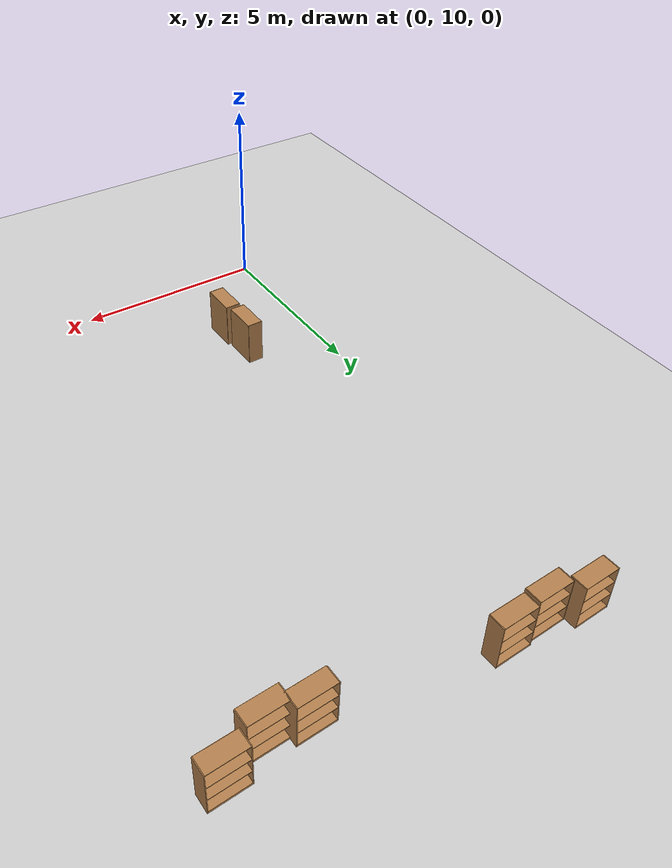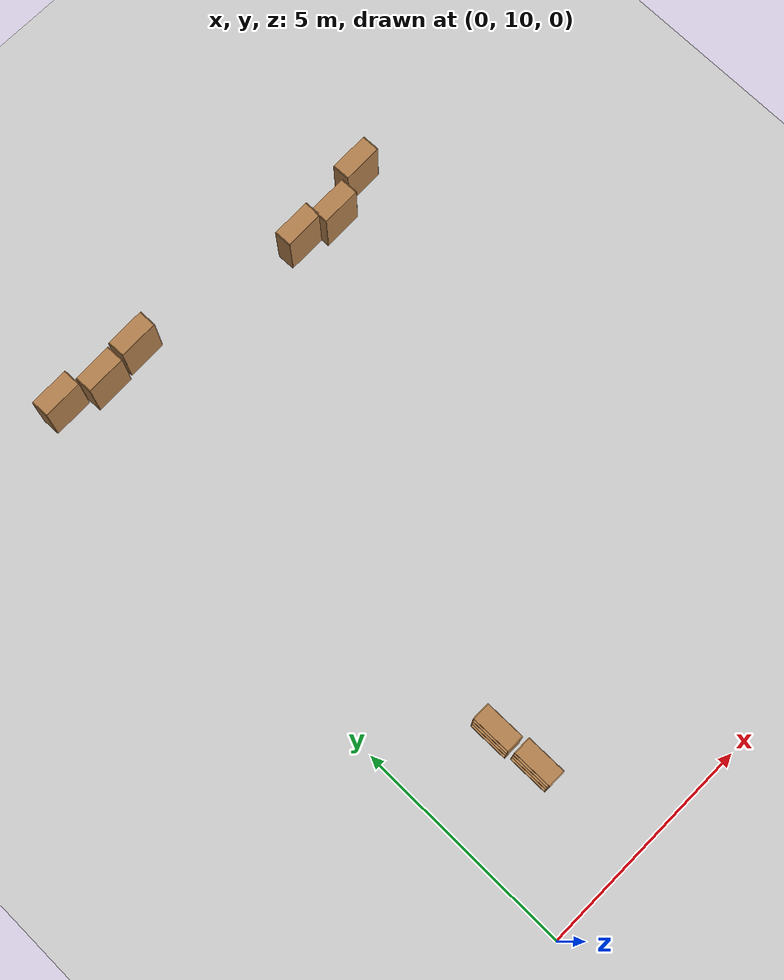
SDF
<sdf version="1.6">
 <world name="default">
  <model name="ground_plane">
   <static>1</static>
   <link name="link">
    <collision name="collision">
     <geometry><plane><normal>0 0 1</normal><size>100 100</size></plane></geometry>
     <surface>
      <contact><collide_bitmask>65535</collide_bitmask></contact>
      <friction><ode><mu>100</mu><mu2>50</mu2></ode></friction>
     </surface>
    </collision>
    <visual name="visual">
     <cast_shadows>0</cast_shadows>
     <geometry><plane><normal>0 0 1</normal><size>100 100</size></plane></geometry>
     <material>
      <script><uri>file://media/materials/scripts/gazebo.material</uri><name>Gazebo/Grey</name></script>
     </material>
    </visual>
   </link>
  </model>
  <model name="bookshelf_clone_2_clone_clone_0_clone_3_clone_clone">
   <static>1</static>
   <link name="link">
    <inertial><mass>1</mass></inertial>
    <collision name="back">
     <pose>0 0.005 0.6 0 -0 0</pose>
     <geometry><box><size>0.9 0.01 1.2</size></box></geometry>
    </collision>
    <visual name="visual1">
     <pose>0 0.005 0.6 0 -0 0</pose>
     <geometry><box><size>0.9 0.01 1.2</size></box></geometry>
     <material>
      <script><uri>file://media/materials/scripts/gazebo.material</uri><name>Gazebo/Wood</name></script>
     </material>
    </visual>
    <collision name="left_side">
     <pose>0.45 -0.195 0.6 0 -0 0</pose>
     <geometry><box><size>0.02 0.4 1.2</size></box></geometry>
    </collision>
    <visual name="visual2">
     <pose>0.45 -0.195 0.6 0 -0 0</pose>
     <geometry><box><size>0.02 0.4 1.2</size></box></geometry>
     <material>
      <script><uri>file://media/materials/scripts/gazebo.material</uri><name>Gazebo/Wood</name></script>
     </material>
    </visual>
    <collision name="right_side">
     <pose>-0.45 -0.195 0.6 0 -0 0</pose>
     <geometry><box><size>0.02 0.4 1.2</size></box></geometry>
    </collision>
    <visual name="visual3">
     <pose>-0.45 -0.195 0.6 0 -0 0</pose>
     <geometry><box><size>0.02 0.4 1.2</size></box></geometry>
     <material>
      <script><uri>file://media/materials/scripts/gazebo.material</uri><name>Gazebo/Wood</name></script>
     </material>
    </visual>
    <collision name="bottom">
     <pose>0 -0.195 0.03 0 -0 0</pose>
     <geometry><box><size>0.88 0.4 0.06</size></box></geometry>
    </collision>
    <visual name="visual4">
     <pose>0 -0.195 0.03 0 -0 0</pose>
     <geometry><box><size>0.88 0.4 0.06</size></box></geometry>
     <material>
      <script><uri>file://media/materials/scripts/gazebo.material</uri><name>Gazebo/Wood</name></script>
     </material>
    </visual>
    <collision name="top">
     <pose>0 -0.195 1.19 0 -0 0</pose>
     <geometry><box><size>0.88 0.4 0.02</size></box></geometry>
    </collision>
    <visual name="visual5">
     <pose>0 -0.195 1.19 0 -0 0</pose>
     <geometry><box><size>0.88 0.4 0.02</size></box></geometry>
     <material>
      <script><uri>file://media/materials/scripts/gazebo.material</uri><name>Gazebo/Wood</name></script>
     </material>
    </visual>
    <collision name="low_shelf">
     <pose>0 -0.195 0.43 0 -0 0</pose>
     <geometry><box><size>0.88 0.4 0.02</size></box></geometry>
    </collision>
    <visual name="visual6">
     <pose>0 -0.195 0.43 0 -0 0</pose>
     <geometry><box><size>0.88 0.4 0.02</size></box></geometry>
     <material>
      <script><uri>file://media/materials/scripts/gazebo.material</uri><name>Gazebo/Wood</name></script>
     </material>
    </visual>
    <collision name="high_shelf">
     <pose>0 -0.195 0.8 0 -0 0</pose>
     <geometry><box><size>0.88 0.4 0.02</size></box></geometry>
    </collision>
    <visual name="visual7">
     <pose>0 -0.195 0.8 0 -0 0</pose>
     <geometry><box><size>0.88 0.4 0.02</size></box></geometry>
     <material>
      <script><uri>file://media/materials/scripts/gazebo.material</uri><name>Gazebo/Wood</name></script>
     </material>
    </visual>
   </link>
   <pose>6.56991 23.4229 0 0 0 -3.10717</pose>
  </model>
  <model name="bookshelf_clone_2_clone_clone_0_clone_3_clone_clone_0">
   <static>1</static>
   <link name="link">
    <inertial><mass>1</mass></inertial>
    <collision name="back">
     <pose>0 0.005 0.6 0 -0 0</pose>
     <geometry><box><size>0.9 0.01 1.2</size></box></geometry>
    </collision>
    <visual name="visual1">
     <pose>0 0.005 0.6 0 -0 0</pose>
     <geometry><box><size>0.9 0.01 1.2</size></box></geometry>
     <material>
      <script><uri>file://media/materials/scripts/gazebo.material</uri><name>Gazebo/Wood</name></script>
     </material>
    </visual>
    <collision name="left_side">
     <pose>0.45 -0.195 0.6 0 -0 0</pose>
     <geometry><box><size>0.02 0.4 1.2</size></box></geometry>
    </collision>
    <visual name="visual2">
     <pose>0.45 -0.195 0.6 0 -0 0</pose>
     <geometry><box><size>0.02 0.4 1.2</size></box></geometry>
     <material>
      <script><uri>file://media/materials/scripts/gazebo.material</uri><name>Gazebo/Wood</name></script>
     </material>
    </visual>
    <collision name="right_side">
     <pose>-0.45 -0.195 0.6 0 -0 0</pose>
     <geometry><box><size>0.02 0.4 1.2</size></box></geometry>
    </collision>
    <visual name="visual3">
     <pose>-0.45 -0.195 0.6 0 -0 0</pose>
     <geometry><box><size>0.02 0.4 1.2</size></box></geometry>
     <material>
      <script><uri>file://media/materials/scripts/gazebo.material</uri><name>Gazebo/Wood</name></script>
     </material>
    </visual>
    <collision name="bottom">
     <pose>0 -0.195 0.03 0 -0 0</pose>
     <geometry><box><size>0.88 0.4 0.06</size></box></geometry>
    </collision>
    <visual name="visual4">
     <pose>0 -0.195 0.03 0 -0 0</pose>
     <geometry><box><size>0.88 0.4 0.06</size></box></geometry>
     <material>
      <script><uri>file://media/materials/scripts/gazebo.material</uri><name>Gazebo/Wood</name></script>
     </material>
    </visual>
    <collision name="top">
     <pose>0 -0.195 1.19 0 -0 0</pose>
     <geometry><box><size>0.88 0.4 0.02</size></box></geometry>
    </collision>
    <visual name="visual5">
     <pose>0 -0.195 1.19 0 -0 0</pose>
     <geometry><box><size>0.88 0.4 0.02</size></box></geometry>
     <material>
      <script><uri>file://media/materials/scripts/gazebo.material</uri><name>Gazebo/Wood</name></script>
     </material>
    </visual>
    <collision name="low_shelf">
     <pose>0 -0.195 0.43 0 -0 0</pose>
     <geometry><box><size>0.88 0.4 0.02</size></box></geometry>
    </collision>
    <visual name="visual6">
     <pose>0 -0.195 0.43 0 -0 0</pose>
     <geometry><box><size>0.88 0.4 0.02</size></box></geometry>
     <material>
      <script><uri>file://media/materials/scripts/gazebo.material</uri><name>Gazebo/Wood</name></script>
     </material>
    </visual>
    <collision name="high_shelf">
     <pose>0 -0.195 0.8 0 -0 0</pose>
     <geometry><box><size>0.88 0.4 0.02</size></box></geometry>
    </collision>
    <visual name="visual7">
     <pose>0 -0.195 0.8 0 -0 0</pose>
     <geometry><box><size>0.88 0.4 0.02</size></box></geometry>
     <material>
      <script><uri>file://media/materials/scripts/gazebo.material</uri><name>Gazebo/Wood</name></script>
     </material>
    </visual>
   </link>
   <pose>7.45589 23.2607 0 0 0 -3.10717</pose>
  </model>
  <model name="bookshelf_clone_2_clone_clone_0_clone_3_clone_clone_1">
   <static>1</static>
   <link name="link">
    <inertial><mass>1</mass></inertial>
    <collision name="back">
     <pose>0 0.005 0.6 0 -0 0</pose>
     <geometry><box><size>0.9 0.01 1.2</size></box></geometry>
    </collision>
    <visual name="visual1">
     <pose>0 0.005 0.6 0 -0 0</pose>
     <geometry><box><size>0.9 0.01 1.2</size></box></geometry>
     <material>
      <script><uri>file://media/materials/scripts/gazebo.material</uri><name>Gazebo/Wood</name></script>
     </material>
    </visual>
    <collision name="left_side">
     <pose>0.45 -0.195 0.6 0 -0 0</pose>
     <geometry><box><size>0.02 0.4 1.2</size></box></geometry>
    </collision>
    <visual name="visual2">
     <pose>0.45 -0.195 0.6 0 -0 0</pose>
     <geometry><box><size>0.02 0.4 1.2</size></box></geometry>
     <material>
      <script><uri>file://media/materials/scripts/gazebo.material</uri><name>Gazebo/Wood</name></script>
     </material>
    </visual>
    <collision name="right_side">
     <pose>-0.45 -0.195 0.6 0 -0 0</pose>
     <geometry><box><size>0.02 0.4 1.2</size></box></geometry>
    </collision>
    <visual name="visual3">
     <pose>-0.45 -0.195 0.6 0 -0 0</pose>
     <geometry><box><size>0.02 0.4 1.2</size></box></geometry>
     <material>
      <script><uri>file://media/materials/scripts/gazebo.material</uri><name>Gazebo/Wood</name></script>
     </material>
    </visual>
    <collision name="bottom">
     <pose>0 -0.195 0.03 0 -0 0</pose>
     <geometry><box><size>0.88 0.4 0.06</size></box></geometry>
    </collision>
    <visual name="visual4">
     <pose>0 -0.195 0.03 0 -0 0</pose>
     <geometry><box><size>0.88 0.4 0.06</size></box></geometry>
     <material>
      <script><uri>file://media/materials/scripts/gazebo.material</uri><name>Gazebo/Wood</name></script>
     </material>
    </visual>
    <collision name="top">
     <pose>0 -0.195 1.19 0 -0 0</pose>
     <geometry><box><size>0.88 0.4 0.02</size></box></geometry>
    </collision>
    <visual name="visual5">
     <pose>0 -0.195 1.19 0 -0 0</pose>
     <geometry><box><size>0.88 0.4 0.02</size></box></geometry>
     <material>
      <script><uri>file://media/materials/scripts/gazebo.material</uri><name>Gazebo/Wood</name></script>
     </material>
    </visual>
    <collision name="low_shelf">
     <pose>0 -0.195 0.43 0 -0 0</pose>
     <geometry><box><size>0.88 0.4 0.02</size></box></geometry>
    </collision>
    <visual name="visual6">
     <pose>0 -0.195 0.43 0 -0 0</pose>
     <geometry><box><size>0.88 0.4 0.02</size></box></geometry>
     <material>
      <script><uri>file://media/materials/scripts/gazebo.material</uri><name>Gazebo/Wood</name></script>
     </material>
    </visual>
    <collision name="high_shelf">
     <pose>0 -0.195 0.8 0 -0 0</pose>
     <geometry><box><size>0.88 0.4 0.02</size></box></geometry>
    </collision>
    <visual name="visual7">
     <pose>0 -0.195 0.8 0 -0 0</pose>
     <geometry><box><size>0.88 0.4 0.02</size></box></geometry>
     <material>
      <script><uri>file://media/materials/scripts/gazebo.material</uri><name>Gazebo/Wood</name></script>
     </material>
    </visual>
   </link>
   <pose>8.45025 23.6256 0 0 0 -3.10717</pose>
  </model>
  <model name="bookshelf_clone_2_clone_clone_0_clone_3_clone_clone_clone_1">
   <static>1</static>
   <link name="link">
    <inertial><mass>1</mass></inertial>
    <collision name="back">
     <pose>0 0.005 0.6 0 -0 0</pose>
     <geometry><box><size>0.9 0.01 1.2</size></box></geometry>
    </collision>
    <visual name="visual1">
     <pose>0 0.005 0.6 0 -0 0</pose>
     <geometry><box><size>0.9 0.01 1.2</size></box></geometry>
     <material>
      <script><uri>file://media/materials/scripts/gazebo.material</uri><name>Gazebo/Wood</name></script>
     </material>
    </visual>
    <collision name="left_side">
     <pose>0.45 -0.195 0.6 0 -0 0</pose>
     <geometry><box><size>0.02 0.4 1.2</size></box></geometry>
    </collision>
    <visual name="visual2">
     <pose>0.45 -0.195 0.6 0 -0 0</pose>
     <geometry><box><size>0.02 0.4 1.2</size></box></geometry>
     <material>
      <script><uri>file://media/materials/scripts/gazebo.material</uri><name>Gazebo/Wood</name></script>
     </material>
    </visual>
    <collision name="right_side">
     <pose>-0.45 -0.195 0.6 0 -0 0</pose>
     <geometry><box><size>0.02 0.4 1.2</size></box></geometry>
    </collision>
    <visual name="visual3">
     <pose>-0.45 -0.195 0.6 0 -0 0</pose>
     <geometry><box><size>0.02 0.4 1.2</size></box></geometry>
     <material>
      <script><uri>file://media/materials/scripts/gazebo.material</uri><name>Gazebo/Wood</name></script>
     </material>
    </visual>
    <collision name="bottom">
     <pose>0 -0.195 0.03 0 -0 0</pose>
     <geometry><box><size>0.88 0.4 0.06</size></box></geometry>
    </collision>
    <visual name="visual4">
     <pose>0 -0.195 0.03 0 -0 0</pose>
     <geometry><box><size>0.88 0.4 0.06</size></box></geometry>
     <material>
      <script><uri>file://media/materials/scripts/gazebo.material</uri><name>Gazebo/Wood</name></script>
     </material>
    </visual>
    <collision name="top">
     <pose>0 -0.195 1.19 0 -0 0</pose>
     <geometry><box><size>0.88 0.4 0.02</size></box></geometry>
    </collision>
    <visual name="visual5">
     <pose>0 -0.195 1.19 0 -0 0</pose>
     <geometry><box><size>0.88 0.4 0.02</size></box></geometry>
     <material>
      <script><uri>file://media/materials/scripts/gazebo.material</uri><name>Gazebo/Wood</name></script>
     </material>
    </visual>
    <collision name="low_shelf">
     <pose>0 -0.195 0.43 0 -0 0</pose>
     <geometry><box><size>0.88 0.4 0.02</size></box></geometry>
    </collision>
    <visual name="visual6">
     <pose>0 -0.195 0.43 0 -0 0</pose>
     <geometry><box><size>0.88 0.4 0.02</size></box></geometry>
     <material>
      <script><uri>file://media/materials/scripts/gazebo.material</uri><name>Gazebo/Wood</name></script>
     </material>
    </visual>
    <collision name="high_shelf">
     <pose>0 -0.195 0.8 0 -0 0</pose>
     <geometry><box><size>0.88 0.4 0.02</size></box></geometry>
    </collision>
    <visual name="visual7">
     <pose>0 -0.195 0.8 0 -0 0</pose>
     <geometry><box><size>0.88 0.4 0.02</size></box></geometry>
     <material>
      <script><uri>file://media/materials/scripts/gazebo.material</uri><name>Gazebo/Wood</name></script>
     </material>
    </visual>
   </link>
   <pose>2.54299 24.1008 0 0 0 -3.10717</pose>
  </model>
  <model name="bookshelf_clone_2_clone_clone_0_clone_3_clone_clone_clone_3">
   <static>1</static>
   <link name="link">
    <inertial><mass>1</mass></inertial>
    <collision name="back">
     <pose>0 0.005 0.6 0 -0 0</pose>
     <geometry><box><size>0.9 0.01 1.2</size></box></geometry>
    </collision>
    <visual name="visual1">
     <pose>0 0.005 0.6 0 -0 0</pose>
     <geometry><box><size>0.9 0.01 1.2</size></box></geometry>
     <material>
      <script><uri>file://media/materials/scripts/gazebo.material</uri><name>Gazebo/Wood</name></script>
     </material>
    </visual>
    <collision name="left_side">
     <pose>0.45 -0.195 0.6 0 -0 0</pose>
     <geometry><box><size>0.02 0.4 1.2</size></box></geometry>
    </collision>
    <visual name="visual2">
     <pose>0.45 -0.195 0.6 0 -0 0</pose>
     <geometry><box><size>0.02 0.4 1.2</size></box></geometry>
     <material>
      <script><uri>file://media/materials/scripts/gazebo.material</uri><name>Gazebo/Wood</name></script>
     </material>
    </visual>
    <collision name="right_side">
     <pose>-0.45 -0.195 0.6 0 -0 0</pose>
     <geometry><box><size>0.02 0.4 1.2</size></box></geometry>
    </collision>
    <visual name="visual3">
     <pose>-0.45 -0.195 0.6 0 -0 0</pose>
     <geometry><box><size>0.02 0.4 1.2</size></box></geometry>
     <material>
      <script><uri>file://media/materials/scripts/gazebo.material</uri><name>Gazebo/Wood</name></script>
     </material>
    </visual>
    <collision name="bottom">
     <pose>0 -0.195 0.03 0 -0 0</pose>
     <geometry><box><size>0.88 0.4 0.06</size></box></geometry>
    </collision>
    <visual name="visual4">
     <pose>0 -0.195 0.03 0 -0 0</pose>
     <geometry><box><size>0.88 0.4 0.06</size></box></geometry>
     <material>
      <script><uri>file://media/materials/scripts/gazebo.material</uri><name>Gazebo/Wood</name></script>
     </material>
    </visual>
    <collision name="top">
     <pose>0 -0.195 1.19 0 -0 0</pose>
     <geometry><box><size>0.88 0.4 0.02</size></box></geometry>
    </collision>
    <visual name="visual5">
     <pose>0 -0.195 1.19 0 -0 0</pose>
     <geometry><box><size>0.88 0.4 0.02</size></box></geometry>
     <material>
      <script><uri>file://media/materials/scripts/gazebo.material</uri><name>Gazebo/Wood</name></script>
     </material>
    </visual>
    <collision name="low_shelf">
     <pose>0 -0.195 0.43 0 -0 0</pose>
     <geometry><box><size>0.88 0.4 0.02</size></box></geometry>
    </collision>
    <visual name="visual6">
     <pose>0 -0.195 0.43 0 -0 0</pose>
     <geometry><box><size>0.88 0.4 0.02</size></box></geometry>
     <material>
      <script><uri>file://media/materials/scripts/gazebo.material</uri><name>Gazebo/Wood</name></script>
     </material>
    </visual>
    <collision name="high_shelf">
     <pose>0 -0.195 0.8 0 -0 0</pose>
     <geometry><box><size>0.88 0.4 0.02</size></box></geometry>
    </collision>
    <visual name="visual7">
     <pose>0 -0.195 0.8 0 -0 0</pose>
     <geometry><box><size>0.88 0.4 0.02</size></box></geometry>
     <material>
      <script><uri>file://media/materials/scripts/gazebo.material</uri><name>Gazebo/Wood</name></script>
     </material>
    </visual>
   </link>
   <pose>0.618351 24.2583 0 0 0 -3.10717</pose>
  </model>
  <model name="bookshelf_clone_2_clone_clone_0_clone_3_clone_clone_clone_2">
   <static>1</static>
   <link name="link">
    <inertial><mass>1</mass></inertial>
    <collision name="back">
     <pose>0 0.005 0.6 0 -0 0</pose>
     <geometry><box><size>0.9 0.01 1.2</size></box></geometry>
    </collision>
    <visual name="visual1">
     <pose>0 0.005 0.6 0 -0 0</pose>
     <geometry><box><size>0.9 0.01 1.2</size></box></geometry>
     <material>
      <script><uri>file://media/materials/scripts/gazebo.material</uri><name>Gazebo/Wood</name></script>
     </material>
    </visual>
    <collision name="left_side">
     <pose>0.45 -0.195 0.6 0 -0 0</pose>
     <geometry><box><size>0.02 0.4 1.2</size></box></geometry>
    </collision>
    <visual name="visual2">
     <pose>0.45 -0.195 0.6 0 -0 0</pose>
     <geometry><box><size>0.02 0.4 1.2</size></box></geometry>
     <material>
      <script><uri>file://media/materials/scripts/gazebo.material</uri><name>Gazebo/Wood</name></script>
     </material>
    </visual>
    <collision name="right_side">
     <pose>-0.45 -0.195 0.6 0 -0 0</pose>
     <geometry><box><size>0.02 0.4 1.2</size></box></geometry>
    </collision>
    <visual name="visual3">
     <pose>-0.45 -0.195 0.6 0 -0 0</pose>
     <geometry><box><size>0.02 0.4 1.2</size></box></geometry>
     <material>
      <script><uri>file://media/materials/scripts/gazebo.material</uri><name>Gazebo/Wood</name></script>
     </material>
    </visual>
    <collision name="bottom">
     <pose>0 -0.195 0.03 0 -0 0</pose>
     <geometry><box><size>0.88 0.4 0.06</size></box></geometry>
    </collision>
    <visual name="visual4">
     <pose>0 -0.195 0.03 0 -0 0</pose>
     <geometry><box><size>0.88 0.4 0.06</size></box></geometry>
     <material>
      <script><uri>file://media/materials/scripts/gazebo.material</uri><name>Gazebo/Wood</name></script>
     </material>
    </visual>
    <collision name="top">
     <pose>0 -0.195 1.19 0 -0 0</pose>
     <geometry><box><size>0.88 0.4 0.02</size></box></geometry>
    </collision>
    <visual name="visual5">
     <pose>0 -0.195 1.19 0 -0 0</pose>
     <geometry><box><size>0.88 0.4 0.02</size></box></geometry>
     <material>
      <script><uri>file://media/materials/scripts/gazebo.material</uri><name>Gazebo/Wood</name></script>
     </material>
    </visual>
    <collision name="low_shelf">
     <pose>0 -0.195 0.43 0 -0 0</pose>
     <geometry><box><size>0.88 0.4 0.02</size></box></geometry>
    </collision>
    <visual name="visual6">
     <pose>0 -0.195 0.43 0 -0 0</pose>
     <geometry><box><size>0.88 0.4 0.02</size></box></geometry>
     <material>
      <script><uri>file://media/materials/scripts/gazebo.material</uri><name>Gazebo/Wood</name></script>
     </material>
    </visual>
    <collision name="high_shelf">
     <pose>0 -0.195 0.8 0 -0 0</pose>
     <geometry><box><size>0.88 0.4 0.02</size></box></geometry>
    </collision>
    <visual name="visual7">
     <pose>0 -0.195 0.8 0 -0 0</pose>
     <geometry><box><size>0.88 0.4 0.02</size></box></geometry>
     <material>
      <script><uri>file://media/materials/scripts/gazebo.material</uri><name>Gazebo/Wood</name></script>
     </material>
    </visual>
   </link>
   <pose>1.57115 24.0143 0 0 0 -3.10717</pose>
  </model>
  <model name="bookshelf_clone_2_clone_clone_0_clone_3_clone_0_clone_1_clone_clone_0_clone_1_clone_1_clone_0">
   <static>1</static>
   <link name="link">
    <inertial><mass>1</mass></inertial>
    <collision name="back">
     <pose>0 0.005 0.6 0 -0 0</pose>
     <geometry><box><size>0.9 0.01 1.2</size></box></geometry>
    </collision>
    <visual name="visual1">
     <pose>0 0.005 0.6 0 -0 0</pose>
     <geometry><box><size>0.9 0.01 1.2</size></box></geometry>
     <material>
      <script><uri>file://media/materials/scripts/gazebo.material</uri><name>Gazebo/Wood</name></script>
     </material>
    </visual>
    <collision name="left_side">
     <pose>0.45 -0.195 0.6 0 -0 0</pose>
     <geometry><box><size>0.02 0.4 1.2</size></box></geometry>
    </collision>
    <visual name="visual2">
     <pose>0.45 -0.195 0.6 0 -0 0</pose>
     <geometry><box><size>0.02 0.4 1.2</size></box></geometry>
     <material>
      <script><uri>file://media/materials/scripts/gazebo.material</uri><name>Gazebo/Wood</name></script>
     </material>
    </visual>
    <collision name="right_side">
     <pose>-0.45 -0.195 0.6 0 -0 0</pose>
     <geometry><box><size>0.02 0.4 1.2</size></box></geometry>
    </collision>
    <visual name="visual3">
     <pose>-0.45 -0.195 0.6 0 -0 0</pose>
     <geometry><box><size>0.02 0.4 1.2</size></box></geometry>
     <material>
      <script><uri>file://media/materials/scripts/gazebo.material</uri><name>Gazebo/Wood</name></script>
     </material>
    </visual>
    <collision name="bottom">
     <pose>0 -0.195 0.03 0 -0 0</pose>
     <geometry><box><size>0.88 0.4 0.06</size></box></geometry>
    </collision>
    <visual name="visual4">
     <pose>0 -0.195 0.03 0 -0 0</pose>
     <geometry><box><size>0.88 0.4 0.06</size></box></geometry>
     <material>
      <script><uri>file://media/materials/scripts/gazebo.material</uri><name>Gazebo/Wood</name></script>
     </material>
    </visual>
    <collision name="top">
     <pose>0 -0.195 1.19 0 -0 0</pose>
     <geometry><box><size>0.88 0.4 0.02</size></box></geometry>
    </collision>
    <visual name="visual5">
     <pose>0 -0.195 1.19 0 -0 0</pose>
     <geometry><box><size>0.88 0.4 0.02</size></box></geometry>
     <material>
      <script><uri>file://media/materials/scripts/gazebo.material</uri><name>Gazebo/Wood</name></script>
     </material>
    </visual>
    <collision name="low_shelf">
     <pose>0 -0.195 0.43 0 -0 0</pose>
     <geometry><box><size>0.88 0.4 0.02</size></box></geometry>
    </collision>
    <visual name="visual6">
     <pose>0 -0.195 0.43 0 -0 0</pose>
     <geometry><box><size>0.88 0.4 0.02</size></box></geometry>
     <material>
      <script><uri>file://media/materials/scripts/gazebo.material</uri><name>Gazebo/Wood</name></script>
     </material>
    </visual>
    <collision name="high_shelf">
     <pose>0 -0.195 0.8 0 -0 0</pose>
     <geometry><box><size>0.88 0.4 0.02</size></box></geometry>
    </collision>
    <visual name="visual7">
     <pose>0 -0.195 0.8 0 -0 0</pose>
     <geometry><box><size>0.88 0.4 0.02</size></box></geometry>
     <material>
      <script><uri>file://media/materials/scripts/gazebo.material</uri><name>Gazebo/Wood</name></script>
     </material>
    </visual>
   </link>
   <pose>2.27356 12.5573 0 0 0 -1.56003</pose>
  </model>
  <model name="bookshelf_clone_2_clone_clone_0_clone_3_clone_0_clone_1_clone_clone_0_clone_1_clone_1_clone_1">
   <static>1</static>
   <link name="link">
    <inertial><mass>1</mass></inertial>
    <collision name="back">
     <pose>0 0.005 0.6 0 -0 0</pose>
     <geometry><box><size>0.9 0.01 1.2</size></box></geometry>
    </collision>
    <visual name="visual1">
     <pose>0 0.005 0.6 0 -0 0</pose>
     <geometry><box><size>0.9 0.01 1.2</size></box></geometry>
     <material>
      <script><uri>file://media/materials/scripts/gazebo.material</uri><name>Gazebo/Wood</name></script>
     </material>
    </visual>
    <collision name="left_side">
     <pose>0.45 -0.195 0.6 0 -0 0</pose>
     <geometry><box><size>0.02 0.4 1.2</size></box></geometry>
    </collision>
    <visual name="visual2">
     <pose>0.45 -0.195 0.6 0 -0 0</pose>
     <geometry><box><size>0.02 0.4 1.2</size></box></geometry>
     <material>
      <script><uri>file://media/materials/scripts/gazebo.material</uri><name>Gazebo/Wood</name></script>
     </material>
    </visual>
    <collision name="right_side">
     <pose>-0.45 -0.195 0.6 0 -0 0</pose>
     <geometry><box><size>0.02 0.4 1.2</size></box></geometry>
    </collision>
    <visual name="visual3">
     <pose>-0.45 -0.195 0.6 0 -0 0</pose>
     <geometry><box><size>0.02 0.4 1.2</size></box></geometry>
     <material>
      <script><uri>file://media/materials/scripts/gazebo.material</uri><name>Gazebo/Wood</name></script>
     </material>
    </visual>
    <collision name="bottom">
     <pose>0 -0.195 0.03 0 -0 0</pose>
     <geometry><box><size>0.88 0.4 0.06</size></box></geometry>
    </collision>
    <visual name="visual4">
     <pose>0 -0.195 0.03 0 -0 0</pose>
     <geometry><box><size>0.88 0.4 0.06</size></box></geometry>
     <material>
      <script><uri>file://media/materials/scripts/gazebo.material</uri><name>Gazebo/Wood</name></script>
     </material>
    </visual>
    <collision name="top">
     <pose>0 -0.195 1.19 0 -0 0</pose>
     <geometry><box><size>0.88 0.4 0.02</size></box></geometry>
    </collision>
    <visual name="visual5">
     <pose>0 -0.195 1.19 0 -0 0</pose>
     <geometry><box><size>0.88 0.4 0.02</size></box></geometry>
     <material>
      <script><uri>file://media/materials/scripts/gazebo.material</uri><name>Gazebo/Wood</name></script>
     </material>
    </visual>
    <collision name="low_shelf">
     <pose>0 -0.195 0.43 0 -0 0</pose>
     <geometry><box><size>0.88 0.4 0.02</size></box></geometry>
    </collision>
    <visual name="visual6">
     <pose>0 -0.195 0.43 0 -0 0</pose>
     <geometry><box><size>0.88 0.4 0.02</size></box></geometry>
     <material>
      <script><uri>file://media/materials/scripts/gazebo.material</uri><name>Gazebo/Wood</name></script>
     </material>
    </visual>
    <collision name="high_shelf">
     <pose>0 -0.195 0.8 0 -0 0</pose>
     <geometry><box><size>0.88 0.4 0.02</size></box></geometry>
    </collision>
    <visual name="visual7">
     <pose>0 -0.195 0.8 0 -0 0</pose>
     <geometry><box><size>0.88 0.4 0.02</size></box></geometry>
     <material>
      <script><uri>file://media/materials/scripts/gazebo.material</uri><name>Gazebo/Wood</name></script>
     </material>
    </visual>
   </link>
   <pose>2.19467 13.5627 0 0 0 -1.56003</pose>
  </model>
 </world>
</sdf>
